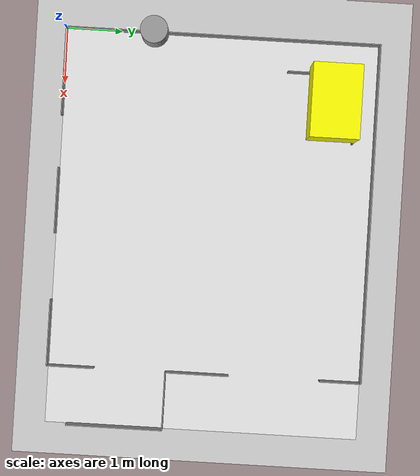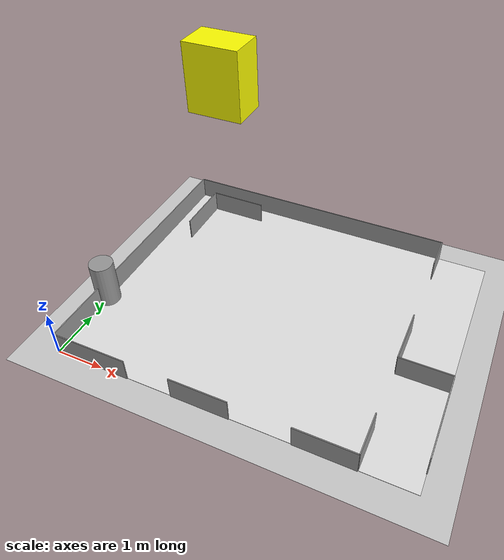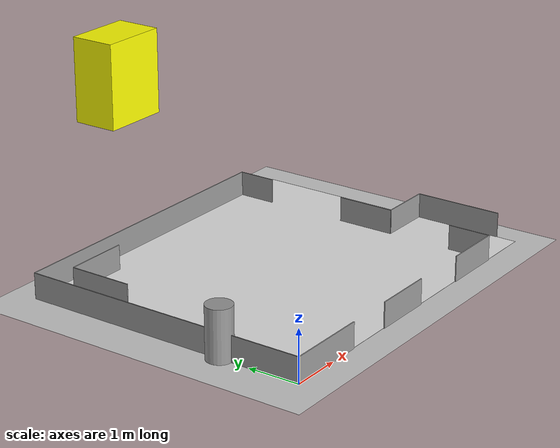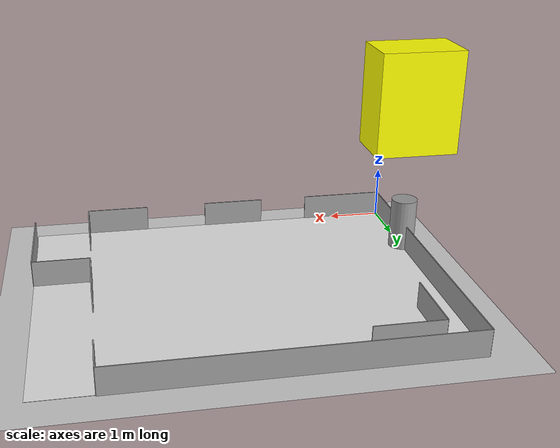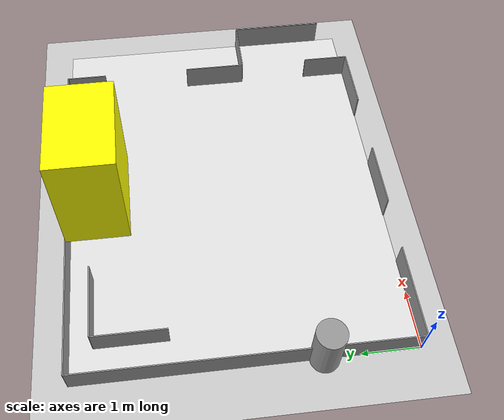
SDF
<sdf version="1.4">
 <world name="LLSF">
  <physics type="ode">
   <max_step_size>0.004</max_step_size>
   <real_time_factor>1</real_time_factor>
   <real_time_update_rate>300</real_time_update_rate>
  </physics>
  <include><uri>model://ground_plane</uri></include>
  <include><uri>model://sun</uri></include>
  <light name="light" type="point">
   <cast_shadows>false</cast_shadows>
   <pose>0 3 5 0 0 0</pose>
   <diffuse>127 127 127 255</diffuse>
   <specular>25 25 25 255</specular>
   <attenuation>
    <range>20.0</range>
    <linear>0.01</linear>
    <constant>0.7</constant>
    <quadratic>0.00</quadratic>
   </attenuation>
  </light>
  <include><uri>model://halle</uri></include>
  <model name="obstacle">
   <static>false</static>
   <link name="obstacle">
    <pose>1.3 4.75 4 0 0 0</pose>
    <collision name="collision"><geometry><box><size>1.23 0.82 1.53</size></box></geometry></collision>
    <visual name="visual">
     <geometry><box><size>1.23 0.82 1.53</size></box></geometry>
     <material><ambient>1.0 1.0 0.0 1</ambient><diffuse>1.0 1.0 0.0 1</diffuse></material>
    </visual>
   </link>
  </model>
  <plugin name="llsf_refbox_comm" filename="libllsf_refbox_comm.so"/>
  <plugin name="timesync" filename="libtimesync.so"/>
 </world>
</sdf>

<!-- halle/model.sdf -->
<sdf version="1.5">
  <model name="Carologistics-RCLL-Training">
    <pose>0 0 0 0 0 0</pose>
    <static>true</static>
    <link name="field">
      <pose>3.6 2.85 0.01 0 0 0</pose>
      <collision name="collision">
        <geometry>
          <plane>
            <normal>0 0 1</normal>
            <size>7.20 5.7</size>
          </plane>
        </geometry>
        <surface>
          <friction>
            <ode>
              <mu>100</mu>
              <mu2>50</mu2>
            </ode>
          </friction>
        </surface>
      </collision>
      <visual name="carpet">
        <cast_shadows>false</cast_shadows>
        <geometry>
          <plane>
            <normal>0 0 1</normal>
            <size>7.20 5.7</size>
          </plane>
        </geometry>
        <material>
	  <ambient>0.9 0.9 0.9 0.9</ambient>
	  <diffuse>0.9 0.9 0.9 0.9</diffuse>
        </material>
      </visual>
    </link>
    <link name="pillar">
      <pose>0 1.6 0.5 0 0 0</pose>
      <visual name="pillar-visual">
        <geometry>
          <cylinder>
            <radius>0.25</radius>
            <length>1</length>
          </cylinder>
        </geometry>
        <cast_shadows>false</cast_shadows>
        <material>
	  <script>
	    <uri>file://media/materials/scripts/gazebo.material</uri>
	    <name>Gazebo/Grey</name>
	  </script>
        </material>
      </visual>
      <collision name="pillar-collision">
        <geometry>
          <cylinder>
            <radius>0.25</radius>
            <length>1</length>
          </cylinder>
        </geometry>
      </collision>
    </link>
    <link name="wall_left">
      <pose>0 2.85 0.25 0 0 0</pose>
      <visual name="wall_bottom_middle_left-visual">
        <geometry>
          <box>
            <size>.02 5.7 .5</size>
          </box>
        </geometry>
        <cast_shadows>false</cast_shadows>
        <material>
	  <script>
	    <uri>file://media/materials/scripts/gazebo.material</uri>
	    <name>Gazebo/Grey</name>
	  </script>
        </material>
      </visual>
      <collision name="wall_bottom_middle_left-collision">
        <geometry>
          <box>
            <size>.02 5.7 .5</size>
          </box>
        </geometry>
      </collision>
    </link>
    <link name="wall_top">
      <pose>3.075 5.7 0.25 0 0 0</pose>
      <visual name="wall_top-visual">
        <geometry>
          <box>
            <size>6.15 .02 .5</size>
          </box>
        </geometry>
        <cast_shadows>false</cast_shadows>
        <material>
	  <script>
	    <uri>file://media/materials/scripts/gazebo.material</uri>
	    <name>Gazebo/Grey</name>
	  </script>
        </material>
      </visual>
      <collision name="wall_top-collision">
        <geometry>
          <box>
            <size>6.15 .02 .5</size>
          </box>
        </geometry>
      </collision>
    </link>
    <link name="wall_right_top">
      <pose>6.15 5.325 0.25 0 0 0</pose>
      <visual name="wall_right_top-visual">
        <geometry>
          <box>
            <size>.02 0.75 .5</size>
          </box>
        </geometry>
        <cast_shadows>false</cast_shadows>
        <material>
	  <script>
	    <uri>file://media/materials/scripts/gazebo.material</uri>
	    <name>Gazebo/Grey</name>
	  </script>
        </material>
      </visual>
      <collision name="wall_right_top-collision">
        <geometry>
          <box>
            <size>.02 0.75 .5</size>
          </box>
        </geometry>
      </collision>
    </link>
    <link name="wall_right_middle">
      <pose>6.15 2.725 0.25 0 0 0</pose>
      <visual name="wall_right_middle-visual">
        <geometry>
          <box>
            <size>.02 1.15 .5</size>
          </box>
        </geometry>
        <cast_shadows>false</cast_shadows>
        <material>
	  <script>
	    <uri>file://media/materials/scripts/gazebo.material</uri>
	    <name>Gazebo/Grey</name>
	  </script>
        </material>
      </visual>
      <collision name="wall_right_middle-collision">
        <geometry>
          <box>
            <size>.02 1.15 .5</size>
          </box>
        </geometry>
      </collision>
    </link>
    <link name="wall_right_quer">
      <pose>6.675 2.15 0.25 0 0 0</pose>
      <visual name="wall_right_quer-visual">
        <geometry>
          <box>
            <size>1.05 .02 .5</size>
          </box>
        </geometry>
        <cast_shadows>false</cast_shadows>
        <material>
	  <script>
	    <uri>file://media/materials/scripts/gazebo.material</uri>
	    <name>Gazebo/Grey</name>
	  </script>
        </material>
      </visual>
      <collision name="wall_right_quer-collision">
        <geometry>
          <box>
            <size>1.05 .02 .5</size>
          </box>
        </geometry>
      </collision>
    </link>
    <link name="wall_right_bottom">
      <pose>6.15 0.425 0.25 0 0 0</pose>
      <visual name="wall_right_bottom-visual">
        <geometry>
          <box>
            <size>.02 0.85 .5</size>
          </box>
        </geometry>
        <cast_shadows>false</cast_shadows>
        <material>
	  <script>
	    <uri>file://media/materials/scripts/gazebo.material</uri>
	    <name>Gazebo/Grey</name>
	  </script>
        </material>
      </visual>
      <collision name="wall_right_bottom-collision">
        <geometry>
          <box>
            <size>.02 0.85 .5</size>
          </box>
        </geometry>
      </collision>
    </link>
    <link name="wall_rightest">
      <pose>7.2 1.275 0.25 0 0 0</pose>
      <visual name="wall_rightest-visual">
        <geometry>
          <box>
            <size>.02 1.75 .5</size>
          </box>
        </geometry>
        <cast_shadows>false</cast_shadows>
        <material>
	  <script>
	    <uri>file://media/materials/scripts/gazebo.material</uri>
	    <name>Gazebo/Grey</name>
	  </script>
        </material>
      </visual>
      <collision name="wall_rightest-collision">
        <geometry>
          <box>
            <size>.02 1.75 .5</size>
          </box>
        </geometry>
      </collision>
    </link>
    <link name="wall_bottom_left">
      <pose>0.8 0 0.25 0 0 0</pose>
      <visual name="wall_bottom_left-visual">
        <geometry>
          <box>
            <size>1.6 .02 .5</size>
          </box>
        </geometry>
        <cast_shadows>false</cast_shadows>
        <material>
	  <script>
	    <uri>file://media/materials/scripts/gazebo.material</uri>
	    <name>Gazebo/Grey</name>
	  </script>
        </material>
      </visual>
      <collision name="wall_bottom_left-collision">
        <geometry>
          <box>
            <size>1.6 .02 .5</size>
          </box>
        </geometry>
      </collision>
    </link>
    <link name="wall_bottom_middle">
      <pose>3.15 0 0.25 0 0 0</pose>
      <visual name="wall_bottom_middle-visual">
        <geometry>
          <box>
            <size>1.2 .02 .5</size>
          </box>
        </geometry>
        <cast_shadows>false</cast_shadows>
        <material>
	  <script>
	    <uri>file://media/materials/scripts/gazebo.material</uri>
	    <name>Gazebo/Grey</name>
	  </script>
        </material>
      </visual>
      <collision name="wall_bottom_middle-collision">
        <geometry>
          <box>
            <size>1.2 .02 .5</size>
          </box>
        </geometry>
      </collision>
    </link>
    <link name="wall_bottom_right">
      <pose>5.55 0 0.25 0 0 0</pose>
      <visual name="wall_bottom_right-visual">
        <geometry>
          <box>
            <size>1.2 .02 .5</size>
          </box>
        </geometry>
        <cast_shadows>false</cast_shadows>
        <material>
	  <script>
	    <uri>file://media/materials/scripts/gazebo.material</uri>
	    <name>Gazebo/Grey</name>
	  </script>
        </material>
      </visual>
      <collision name="wall_bottom_right-collision">
        <geometry>
          <box>
            <size>1.2 .02 .5</size>
          </box>
        </geometry>
      </collision>
    </link>
    <link name="wall_inside_left">
      <pose>0.575 4.675 0.25 0 0 0</pose>
      <visual name="wall_inside_left-visual">
        <geometry>
          <box>
            <size>.02 1.25 .5</size>
          </box>
        </geometry>
        <cast_shadows>false</cast_shadows>
        <material>
	  <script>
	    <uri>file://media/materials/scripts/gazebo.material</uri>
	    <name>Gazebo/Grey</name>
	  </script>
        </material>
      </visual>
      <collision name="wall_inside_left-collision">
        <geometry>
          <box>
            <size>.02 1.25 .5</size>
          </box>
        </geometry>
      </collision>
    </link>
    <link name="wall_inside_right">
      <pose>1.2 5.3 0.25 0 0 0</pose>
      <visual name="wall_inside_right-visual">
        <geometry>
          <box>
            <size>1.25 .02 .5</size>
          </box>
        </geometry>
        <cast_shadows>false</cast_shadows>
        <material>
	  <script>
	    <uri>file://media/materials/scripts/gazebo.material</uri>
	    <name>Gazebo/Grey</name>
	  </script>
        </material>
      </visual>
      <collision name="wall_inside_right-collision">
        <geometry>
          <box>
            <size>1.25 .02 .5</size>
          </box>
        </geometry>
      </collision>
    </link>
  </model>
</sdf>
